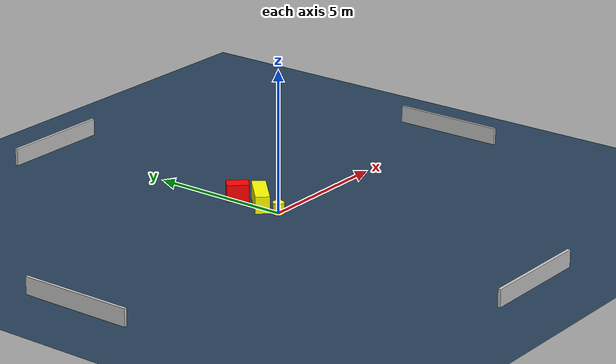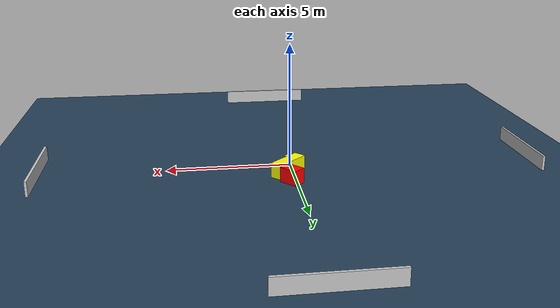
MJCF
<?xml version="1.0" ?>
<mujoco model="generated_environment">
  <option timestep="0.01" integrator="RK4" cone="elliptic"/>
  <default>
    <geom density="1"/>
  </default>
  <asset>
    <texture builtin="gradient" height="3072" name="skybox" rgb1="0.3 0.5 0.7" rgb2="0 0 0" type="skybox" width="512"/>
    <texture builtin="checker" height="300" name="groundplane" rgb1="0.2 0.3 0.4" rgb2="0.1 0.2 0.3" type="2d" width="300"/>
    <material name="groundplane" reflectance="0.2" texrepeat="5 5" texture="groundplane"/>
  </asset>
  <worldbody>
    <light dir="0 0 -1" directional="true" pos="0 0 1.5"/>
    <geom condim="3" friction="0.5 0.005 0.001" material="groundplane" name="floor" pos="0 0 0" size="0 0 0.05" type="plane"/>
    <body name="walls">
      <geom name="wall_1" condim="4" pos="-10.0 0.0 0.3" rgba="0.800000011920929 0.800000011920929 0.800000011920929 1.0" size="0.05 2.0 0.3" type="box"/>
      <geom name="wall_2" condim="4" pos="10.0 0.0 0.3" rgba="0.800000011920929 0.800000011920929 0.800000011920929 1.0" size="0.05 2.0 0.3" type="box"/>
      <geom name="wall_3" condim="4" pos="0.0 -10.0 0.3" rgba="0.800000011920929 0.800000011920929 0.800000011920929 1.0" size="2.0 0.05 0.3" type="box"/>
      <geom name="wall_4" condim="4" pos="0.0 10.0 0.3" rgba="0.800000011920929 0.800000011920929 0.800000011920929 1.0" size="2.0 0.05 0.3" type="box"/>
    </body>
    <body name="robot">
      <joint name="joint_x" type="slide" pos="0 0 0" axis="1 0 0"/>
      <joint name="joint_y" type="slide" pos="0 0 0" axis="0 1 0"/>
      <geom name="robot" type="cylinder" pos="0.0 0.0 0.2" size="0.2 0.2 0.0" mass="5.0" friction="1.0 0.005 0.0001" condim="4" rgba="1.0 1.0 0.0 1.0"/>
    </body>
    <body name="obstacle_1_movable">
      <geom name="obstacle_1_movable" condim="4" pos="0.19926606996001023 0.9099939370323582 0.3" euler="0 0 313.50709484797534" friction="0.0 0.005 0.001" rgba="1.0 1.0 0.0 1.0" size="0.24519065916242194 0.7609433180079432 0.3" type="box" mass="0.1"/>
      <joint type="free"/>
    </body>
    <body name="obstacle_2_static">
      <geom name="obstacle_2_static" condim="4" pos="0.17470125595921057 1.874475183737229 0.3" euler="0 0 41.61454718451662" friction="0.0 0.005 0.001" rgba="1.0 0.0 0.0 1.0" size="0.25940857505960646 0.38291609572062923 0.3" type="box"/>
    </body>
  </worldbody>
  <actuator>
    <motor name="actuator_x" joint="joint_x" gear="1" ctrlrange="-1 1"/>
    <motor name="actuator_y" joint="joint_y" gear="1" ctrlrange="-1 1"/>
  </actuator>
</mujoco>
